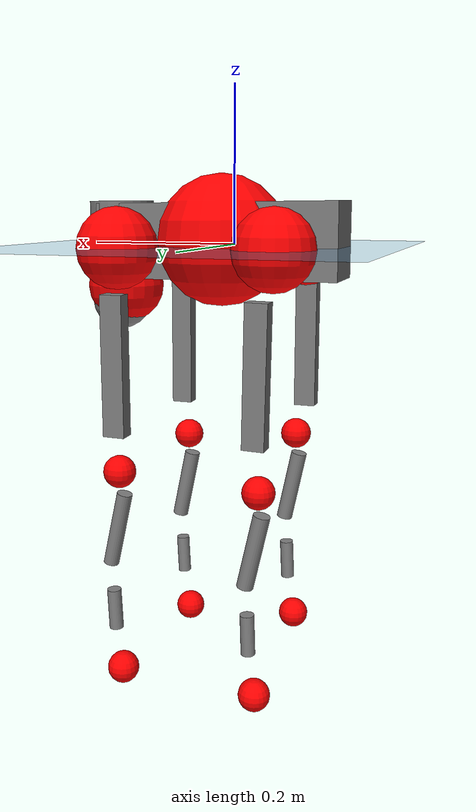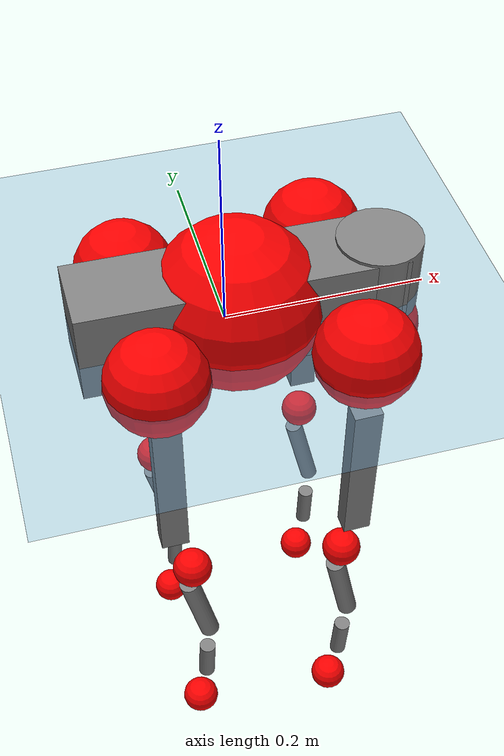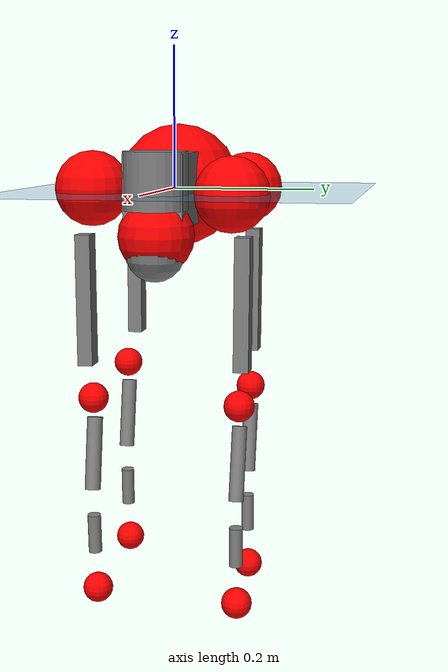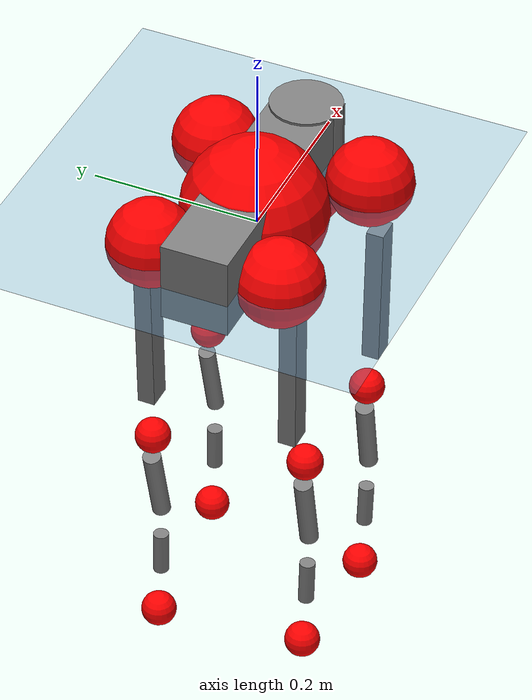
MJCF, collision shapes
<mujoco model="go2">
  <compiler angle="radian" assetdir="assets" balanceinertia="true" inertiafromgeom="false"/>

  <option timestep="0.005" density="1.2" viscosity="2e-05"/>

  <size nkey="1"/>

  <visual>
    <quality shadowsize="8192"/>
    <map shadowclip="0.5"/>
  </visual>

  <default>
    <default class="/">
      <geom contype="0" conaffinity="0" group="1" solref="-1000 -80"/>
      <site size="0.01 0.005 0.005" group="5"/>
      <general forcelimited="true" biastype="affine" gainprm="20" biasprm="0 -20 -0.5"/>
      <default class="go2">
        <joint armature="0.01" damping="0.01" frictionloss="0.2"/>
        <geom condim="1" margin="0.001"/>
        <default class="visual">
          <geom type="mesh" group="2"/>
        </default>
        <default class="collision">
          <geom group="3"/>
          <default class="foot">
            <geom size="0.022 0 0" condim="6" priority="1" friction="0.8 0.02 0.01" solimp="0.015 1 0.022"/>
          </default>
        </default>
        <default class="reward_collision_sphere">
          <geom group="5" rgba="1 0 0 1"/>
        </default>
      </default>
    </default>
  </default>

  <asset>
    <texture type="skybox" colorspace="auto" name="//unnamed_texture_0" builtin="gradient" rgb1="0.95 0.95 0.95" rgb2="0.95 0.95 0.95" width="100" height="600"/>
    <texture type="2d" colorspace="auto" name="texplane" builtin="checker" rgb1="0.345 0.575 0.748" rgb2="0.345 0.575 0.748" markrgb="1 1 1" width="512" height="512"/>
    <material name="MatPlane" class="/" texture="texplane" texuniform="true" texrepeat="2 2" specular="0.9"/>
    <material name="metal" class="/" rgba="0.9 0.95 0.95 1"/>
    <material name="black" class="/" rgba="0 0 0 1"/>
    <material name="white" class="/"/>
    <material name="gray" class="/" rgba="0.671705 0.692426 0.77427 1"/>
    <mesh name="base_0" class="/" file="base_0.obj"/>
    <mesh name="base_1" class="/" file="base_1.obj"/>
    <mesh name="base_2" class="/" file="base_2.obj"/>
    <mesh name="base_3" class="/" file="base_3.obj"/>
    <mesh name="base_4" class="/" file="base_4.obj"/>
    <mesh name="hip_0" class="/" file="hip_0.obj"/>
    <mesh name="hip_1" class="/" file="hip_1.obj"/>
    <mesh name="thigh_0" class="/" file="thigh_0.obj"/>
    <mesh name="thigh_1" class="/" file="thigh_1.obj"/>
    <mesh name="thigh_mirror_0" class="/" file="thigh_mirror_0.obj"/>
    <mesh name="thigh_mirror_1" class="/" file="thigh_mirror_1.obj"/>
    <mesh name="calf_0" class="/" file="calf_0.obj"/>
    <mesh name="calf_1" class="/" file="calf_1.obj"/>
    <mesh name="calf_mirror_0" class="/" file="calf_mirror_0.obj"/>
    <mesh name="calf_mirror_1" class="/" file="calf_mirror_1.obj"/>
    <mesh name="foot" class="/" file="foot.obj"/>
  </asset>

  <worldbody>
    <geom name="floor" class="/" size="100 100 0.125" type="plane" group="0" material="MatPlane"/>
    <light name="toplight_shadow" class="/" pos="0 0 5" dir="0.0990148 0.0990148 -0.990148" type="directional" ambient="0.04 0.04 0.04" diffuse="0.55 0.55 0.55" specular="0.12 0.12 0.12"/>
    <light name="toplight_fill" class="/" pos="0 0 5" dir="0.0990148 0.0990148 -0.990148" type="directional" castshadow="false" ambient="0.04 0.04 0.04" diffuse="0.3 0.3 0.3" specular="0.08 0.08 0.08"/>
    <body name="trunk" childclass="go2" pos="0.013903 0.0097096 0.00580116" quat="0.999984 -0.000987138 0.00542095 0.00117867">
      <inertial pos="0.0250795 0.00113127 -0.00654085" quat="-0.028595 0.710902 -0.00529833 0.70269" mass="4.01515" diaginertia="0.00339453 0.0211429 0.0830285"/>
      <joint name="//unnamed_joint_0" type="free" armature="0" damping="0" frictionloss="0"/>
      <geom name="//unnamed_geom_1" class="visual" material="black" mesh="base_0"/>
      <geom name="//unnamed_geom_2" class="visual" material="black" mesh="base_1"/>
      <geom name="//unnamed_geom_3" class="visual" material="black" mesh="base_2"/>
      <geom name="//unnamed_geom_4" class="visual" material="white" mesh="base_3"/>
      <geom name="//unnamed_geom_5" class="visual" material="gray" mesh="base_4"/>
      <geom name="trunk_1" class="collision" size="0.16036 0.0398555 0.0485938" type="box"/>
      <geom name="trunk_2" class="collision" size="0.0426262 0.0383636" pos="0.141579 0 0.0132211" type="cylinder"/>
      <geom name="trunk_3" class="collision" size="0.0400686" pos="0.145554 0 -0.0793264"/>
      <geom name="//unnamed_geom_9" class="reward_collision_sphere" size="0.0852523"/>
      <geom name="//unnamed_geom_10" class="reward_collision_sphere" size="0.0511514" pos="0.139096 0 -0.0594948"/>
      <site name="imu" pos="-0.0127762 -0.0271859 0.0770009" size="0.00852523"/>
      <camera name="track" pos="0 -1.47739 0" quat="0.707107 0.707107 0 0" mode="trackcom"/>
      <camera name="ego_camera" pos="0.154992 0 0.0594948" quat="-0.5 -0.5 0.5 0.5"/>
      <body name="FL_hip" pos="0.104603 0.0431512 -0.00590649" quat="0.999976 -0.00149321 -0.00675472 -0.000576905">
        <inertial pos="0.0121548 0.00894878 0.00749219" quat="0.49504 0.501466 0.505862 0.497565" mass="0.364795" diaginertia="2.33563e-05 0.000129432 0.00148293"/>
        <joint name="FL_hip_joint" pos="0 0 0" axis="0.999929 0.00996238 -0.00653039" stiffness="0.0294362" range="-1.03028 1.28898" armature="0.00398834" damping="0.0532479" frictionloss="0.117689"/>
        <geom name="//unnamed_geom_11" class="visual" material="metal" mesh="hip_0"/>
        <geom name="//unnamed_geom_12" class="visual" material="gray" mesh="hip_1"/>
        <geom name="//unnamed_geom_13" class="collision" size="0.0392161 0.0170505" pos="0 0.0590955 0" quat="0.707107 0.707107 0 0" type="cylinder"/>
        <geom name="//unnamed_geom_14" class="reward_collision_sphere" size="0.0511514" pos="0 0.0517085 0"/>
        <body name="FL_thigh" pos="-0.00139102 0.0677346 -0.00556551" quat="1 -0.000168689 4.43013e-05 -5.75357e-05">
          <inertial pos="-0.0157135 -0.0178078 -0.0558611" quat="0.827618 0.0875676 -0.018196 0.554121" mass="0.756448" diaginertia="0.000184885 0.00123122 0.003843"/>
          <joint name="FL_thigh_joint" pos="0 0 0" axis="0.0218153 0.999369 0.0280227" range="-1.3442 3.27796" armature="0.00419239" damping="0.0773172" frictionloss="0.109664"/>
          <geom name="//unnamed_geom_15" class="visual" material="metal" mesh="thigh_0"/>
          <geom name="//unnamed_geom_16" class="visual" material="gray" mesh="thigh_1"/>
          <geom name="//unnamed_geom_17" class="collision" size="0.0907937 0.0104434 0.0144929" pos="0 0 -0.140804" quat="0.707107 0 0.707107 0" type="box"/>
          <body name="FL_calf" pos="-0.000968833 -0.0037935 -0.280794" quat="0.99999 -0.000514867 -0.00450018 -0.000128106">
            <inertial pos="-0.00516728 -0.00793144 -0.176603" quat="0.75167 0.00703954 -0.0176501 0.659266" mass="0.141856" diaginertia="4.80073e-05 0.00029349 0.000240136"/>
            <joint name="FL_calf_joint" pos="0 0 0" axis="0.00427496 0.999769 -0.0210635" stiffness="0.00722143" range="-2.70075 -0.603287" armature="0.0122192" damping="0" frictionloss="0.188621"/>
            <geom name="//unnamed_geom_18" class="visual" material="gray" mesh="calf_0"/>
            <geom name="//unnamed_geom_19" class="visual" material="black" mesh="calf_1"/>
            <geom name="FL_calf0" class="collision" size="0.0102303 0.0511514" pos="0.00397416 0 -0.0793264" quat="0.994493 0 -0.104807 0" type="cylinder"/>
            <geom name="//unnamed_geom_21" class="collision" size="0.00937776 0.027707" pos="0.0099354 0 -0.195672" quat="0.999688 0 0.0249974 0" type="cylinder"/>
            <geom name="//unnamed_geom_22" class="visual" pos="0 0 -0.281609" quat="1 0 0 0" material="black" mesh="foot"/>
            <geom name="FL_foot" class="foot" size="0.0161568" pos="-0.00099354 0 -0.281609"/>
            <geom name="//unnamed_geom_24" class="reward_collision_sphere" size="0.0213131"/>
            <geom name="//unnamed_geom_25" class="reward_collision_sphere" size="0.0213131" pos="-0.00099354 0 -0.281609"/>
            <site name="FL_foot" class="foot" pos="-0.00099354 0 -0.281609" size="0.00852523"/>
          </body>
        </body>
      </body>
      <body name="FR_hip" pos="0.0985975 -0.046199 -0.000351648" quat="0.999994 -0.000200329 -0.00248453 0.00228122">
        <inertial pos="-0.0136376 -0.00563152 0.000215667" quat="0.497343 0.506121 0.50076 0.495712" mass="0.295803" diaginertia="2.42265e-05 0.000120168 0.00189356"/>
        <joint name="FR_hip_joint" pos="0 0 0" axis="0.99988 -0.011239 -0.0106505" stiffness="0.0529392" range="-1.20749 1.04613" armature="0.014735" damping="0.00837141" frictionloss="0.0502681"/>
        <geom name="//unnamed_geom_26" class="visual" pos="0 -5.08246e-09 -2.17997e-07" quat="4.63268e-05 1 0 0" material="metal" mesh="hip_0"/>
        <geom name="//unnamed_geom_27" class="visual" pos="0 -8.23927e-09 5.3919e-07" quat="4.63268e-05 1 0 0" material="gray" mesh="hip_1"/>
        <geom name="//unnamed_geom_28" class="collision" size="0.0392161 0.0170505" pos="0 -0.0590955 0" quat="0.707107 0.707107 0 0" type="cylinder"/>
        <geom name="//unnamed_geom_29" class="reward_collision_sphere" size="0.0511514" pos="0 -0.0517085 0"/>
        <body name="FR_thigh" pos="-0.00042874 -0.0649169 -0.0125123" quat="0.999977 0.00522124 -0.00168215 0.00395734">
          <inertial pos="0.00816464 0.0311013 -0.0388418" quat="0.551346 -0.00962668 0.0870223 0.82967" mass="0.904692" diaginertia="0.000193943 0.00148149 0.00431955"/>
          <joint name="FR_thigh_joint" pos="0 0 0" axis="0.00614286 -0.999916 0.0114426" stiffness="0.00570702" range="-3.39915 1.68201" armature="0.00874083" damping="0" frictionloss="0.117144"/>
          <geom name="//unnamed_geom_30" class="visual" material="metal" mesh="thigh_mirror_0"/>
          <geom name="//unnamed_geom_31" class="visual" material="gray" mesh="thigh_mirror_1"/>
          <geom name="//unnamed_geom_32" class="collision" size="0.0907937 0.0104434 0.0144929" pos="0 0 -0.140804" quat="0.707107 0 0.707107 0" type="box"/>
          <body name="FR_calf" pos="-0.00924565 0.00432741 -0.281543" quat="1 -3.94651e-05 3.59718e-05 -8.67562e-06">
            <inertial pos="-0.00435647 -0.000555976 -0.182707" quat="0.707485 0.00289815 -0.00405784 0.706711" mass="0.1215" diaginertia="3.28577e-05 0.000310256 0.000182902"/>
            <joint name="FR_calf_joint" pos="0 0 0" axis="-0.0133808 -0.998466 0.0537349" stiffness="0.0412784" range="0.857757 2.75541" armature="0.00812591" damping="0" frictionloss="0.137228"/>
            <geom name="//unnamed_geom_33" class="visual" material="gray" mesh="calf_mirror_0"/>
            <geom name="//unnamed_geom_34" class="visual" material="black" mesh="calf_mirror_1"/>
            <geom name="FR_calf0" class="collision" size="0.0110828 0.0511514" pos="0.0049677 0 -0.0793264" quat="0.995004 0 -0.0998334 0" type="cylinder"/>
            <geom name="//unnamed_geom_36" class="collision" size="0.00937776 0.027707" pos="0.0099354 0 -0.195672" quat="0.999688 0 0.0249974 0" type="cylinder"/>
            <geom name="//unnamed_geom_37" class="visual" pos="0 0 -0.281609" quat="1 0 0 0" material="black" mesh="foot"/>
            <geom name="FR_foot" class="foot" size="0.0159179" pos="-0.00099354 0 -0.281609"/>
            <geom name="//unnamed_geom_39" class="reward_collision_sphere" size="0.0213131"/>
            <geom name="//unnamed_geom_40" class="reward_collision_sphere" size="0.0213131" pos="-0.00099354 0 -0.281609"/>
            <site name="FR_foot" class="foot" pos="-0.00099354 0 -0.281609" size="0.00852523"/>
          </body>
        </body>
      </body>
      <body name="RL_hip" pos="-0.0934658 0.0316629 -0.00811932" quat="0.999969 0.000496975 -0.00711564 -0.00324367">
        <inertial pos="-0.0112502 0.00485716 -0.00155839" quat="0.50486 0.498442 0.49733 0.499334" mass="0.399079" diaginertia="2.66417e-05 0.000113679 0.00202238"/>
        <joint name="RL_hip_joint" pos="0 0 0" axis="-0.999859 0.0164947 0.00307746" range="-0.991092 1.00773" armature="0.00832713" damping="0" frictionloss="0.121882"/>
        <geom name="//unnamed_geom_41" class="visual" pos="7.19e-09 0 1.4094e-06" quat="4.63268e-05 0 1 0" material="metal" mesh="hip_0"/>
        <geom name="//unnamed_geom_42" class="visual" pos="1.16558e-08 0 1.24994e-06" quat="4.63268e-05 0 1 0" material="gray" mesh="hip_1"/>
        <geom name="//unnamed_geom_43" class="collision" size="0.0392161 0.0170505" pos="0 0.0590955 0" quat="0.707107 0.707107 0 0" type="cylinder"/>
        <geom name="//unnamed_geom_44" class="reward_collision_sphere" size="0.0511514" pos="0 0.0517085 0"/>
        <body name="RL_thigh" pos="0.0132647 0.0643008 -0.0101236" quat="0.999977 -0.00218843 -0.00564789 -0.00291049">
          <inertial pos="-0.00213141 -0.0135801 -0.0404203" quat="0.844944 0.0484204 -0.0613967 0.529108" mass="0.818041" diaginertia="0.000170151 0.00145929 0.00332645"/>
          <joint name="RL_thigh_joint" pos="0 0 0" axis="0.00488057 0.999985 0.00232233" range="-0.479999 4.52186" armature="0.0120186" damping="0.0775738" frictionloss="0.215419"/>
          <geom name="//unnamed_geom_45" class="visual" material="metal" mesh="thigh_0"/>
          <geom name="//unnamed_geom_46" class="visual" material="gray" mesh="thigh_1"/>
          <geom name="//unnamed_geom_47" class="collision" size="0.0907937 0.0104434 0.0144929" pos="0 0 -0.140804" quat="0.707107 0 0.707107 0" type="box"/>
          <body name="RL_calf" pos="-0.00541896 -0.00244366 -0.288655" quat="1 3.89761e-05 -5.49518e-05 -9.46685e-05">
            <inertial pos="0.00246724 -2.35752e-05 -0.195055" quat="0.711235 0.00351889 0.00049005 0.702945" mass="0.150407" diaginertia="4.49791e-05 0.000324147 0.000218562"/>
            <joint name="RL_calf_joint" pos="0 0 0" axis="0.00616079 0.999943 -0.00870094" stiffness="0.00436853" range="-2.64374 -0.855966" armature="0.0118319" damping="0.0670365" frictionloss="0.169879"/>
            <geom name="//unnamed_geom_48" class="visual" material="gray" mesh="calf_0"/>
            <geom name="//unnamed_geom_49" class="visual" material="black" mesh="calf_1"/>
            <geom name="RL_calf0" class="collision" size="0.0110828 0.0511514" pos="0.0049677 0 -0.0793264" quat="0.995004 0 -0.0998334 0" type="cylinder"/>
            <geom name="//unnamed_geom_51" class="collision" size="0.00937776 0.027707" pos="0.0099354 0 -0.195672" quat="0.999688 0 0.0249974 0" type="cylinder"/>
            <geom name="//unnamed_geom_52" class="visual" pos="0 0 -0.281609" quat="1 0 0 0" material="black" mesh="foot"/>
            <geom name="RL_foot" class="foot" size="0.0120102" pos="-0.00099354 0 -0.281609"/>
            <geom name="//unnamed_geom_54" class="reward_collision_sphere" size="0.0213131"/>
            <geom name="//unnamed_geom_55" class="reward_collision_sphere" size="0.0213131" pos="-0.00099354 0 -0.281609"/>
            <site name="RL_foot" class="foot" pos="-0.00099354 0 -0.281609" size="0.00852523"/>
          </body>
        </body>
      </body>
      <body name="RR_hip" pos="-0.0945113 -0.0208636 -0.0110001" quat="0.999988 0.00395475 -0.0025562 -0.00152599">
        <inertial pos="0.000572813 -0.0124327 0.000978745" quat="0.513818 0.498115 0.531977 0.452629" mass="0.422228" diaginertia="2.39391e-05 0.000116272 0.00207555"/>
        <joint name="RR_hip_joint" pos="0 0 0" axis="-0.999895 -0.0121031 -0.00793016" range="-1.09992 1.05126" armature="0.00201058" damping="0" frictionloss="0.274315"/>
        <geom name="//unnamed_geom_56" class="visual" pos="-7.18162e-09 -5.08246e-09 1.6274e-06" quat="2.14617e-09 4.63268e-05 4.63268e-05 -1" material="metal" mesh="hip_0"/>
        <geom name="//unnamed_geom_57" class="visual" pos="-1.16766e-08 -8.23927e-09 7.10751e-07" quat="2.14617e-09 4.63268e-05 4.63268e-05 -1" material="gray" mesh="hip_1"/>
        <geom name="//unnamed_geom_58" class="collision" size="0.0392161 0.0170505" pos="0 -0.0590955 0" quat="0.707107 0.707107 0 0" type="cylinder"/>
        <geom name="//unnamed_geom_59" class="reward_collision_sphere" size="0.0511514" pos="0 -0.0517085 0"/>
        <body name="RR_thigh" pos="0.000604137 -0.0677979 0.0114179" quat="0.999995 -0.00305339 -0.000110998 0.00118046">
          <inertial pos="-0.00280397 0.023469 -0.0436719" quat="0.553998 -0.0184 0.08783 0.827668" mass="0.829831" diaginertia="0.000207247 0.00135974 0.00440682"/>
          <joint name="RR_thigh_joint" pos="0 0 0" axis="0.0507645 -0.998507 0.0201781" stiffness="0.0471465" range="-4.27957 0.353104" armature="0.00549993" damping="0.0215279" frictionloss="0.205394"/>
          <geom name="//unnamed_geom_60" class="visual" material="metal" mesh="thigh_mirror_0"/>
          <geom name="//unnamed_geom_61" class="visual" material="gray" mesh="thigh_mirror_1"/>
          <geom name="//unnamed_geom_62" class="collision" size="0.0907937 0.0104434 0.0144929" pos="0 0 -0.140804" quat="0.707107 0 0.707107 0" type="box"/>
          <body name="RR_calf" pos="0.0160424 -0.0103004 -0.2785" quat="0.999999 0.000145962 -0.00140924 -0.000264994">
            <inertial pos="-0.0121031 -0.00163529 -0.194796" quat="0.694535 -0.019915 -0.0197706 0.718911" mass="0.14361" diaginertia="4.79416e-05 0.000427019 0.000223645"/>
            <joint name="RR_calf_joint" pos="0 0 0" axis="-0.00103023 -0.999902 0.013939" stiffness="0.00176743" range="0.63599 2.41211" armature="0.013662" damping="0" frictionloss="0.134052"/>
            <geom name="//unnamed_geom_63" class="visual" material="gray" mesh="calf_mirror_0"/>
            <geom name="//unnamed_geom_64" class="visual" material="black" mesh="calf_mirror_1"/>
            <geom name="RR_calf0" class="collision" size="0.0110828 0.0511514" pos="0.0049677 0 -0.0793264" quat="0.995004 0 -0.0998334 0" type="cylinder"/>
            <geom name="//unnamed_geom_66" class="collision" size="0.00937776 0.027707" pos="0.0099354 0 -0.195672" quat="0.999688 0 0.0249974 0" type="cylinder"/>
            <geom name="//unnamed_geom_67" class="visual" pos="0 0 -0.281609" quat="1 0 0 0" material="black" mesh="foot"/>
            <geom name="RR_foot" class="foot" size="0.0199581" pos="-0.00099354 0 -0.281609"/>
            <geom name="//unnamed_geom_69" class="reward_collision_sphere" size="0.0213131"/>
            <geom name="//unnamed_geom_70" class="reward_collision_sphere" size="0.0213131" pos="-0.00099354 0 -0.281609"/>
            <site name="RR_foot" class="foot" pos="-0.00099354 0 -0.281609" size="0.00852523"/>
          </body>
        </body>
      </body>
    </body>
  </worldbody>

  <contact>
    <pair class="/" geom1="floor" geom2="FL_foot" name="//unnamed_contact_0"/>
    <pair class="/" geom1="floor" geom2="FR_foot" name="//unnamed_contact_1"/>
    <pair class="/" geom1="floor" geom2="RL_foot" name="//unnamed_contact_2"/>
    <pair class="/" geom1="floor" geom2="RR_foot" name="//unnamed_contact_3"/>
  </contact>

  <actuator>
    <general name="FL_hip" class="/" joint="FL_hip_joint" forcerange="-20.7524 20.7524" gainprm="16.9364" biasprm="0 -16.9364 -0.425498"/>
    <general name="FL_thigh" class="/" joint="FL_thigh_joint" forcerange="-25.8616 25.8616" gainprm="16.9364" biasprm="0 -16.9364 -0.425498"/>
    <general name="FL_calf" class="/" joint="FL_calf_joint" forcerange="-41.0753 41.0753" gainprm="16.9364" biasprm="0 -16.9364 -0.425498"/>
    <general name="FR_hip" class="/" joint="FR_hip_joint" forcerange="-8.88779 8.88779" gainprm="16.9364" biasprm="0 -16.9364 -0.425498"/>
    <general name="FR_thigh" class="/" joint="FR_thigh_joint" forcerange="-19.2422 19.2422" gainprm="16.9364" biasprm="0 -16.9364 -0.425498"/>
    <general name="FR_calf" class="/" joint="FR_calf_joint" forcerange="-53.7416 53.7416" gainprm="16.9364" biasprm="0 -16.9364 -0.425498"/>
    <general name="RL_hip" class="/" joint="RL_hip_joint" forcerange="-21.4934 21.4934" gainprm="16.9364" biasprm="0 -16.9364 -0.425498"/>
    <general name="RL_thigh" class="/" joint="RL_thigh_joint" forcerange="-21.6033 21.6033" gainprm="16.9364" biasprm="0 -16.9364 -0.425498"/>
    <general name="RL_calf" class="/" joint="RL_calf_joint" forcerange="-38.0932 38.0932" gainprm="16.9364" biasprm="0 -16.9364 -0.425498"/>
    <general name="RR_hip" class="/" joint="RR_hip_joint" forcerange="-18.8314 18.8314" gainprm="16.9364" biasprm="0 -16.9364 -0.425498"/>
    <general name="RR_thigh" class="/" joint="RR_thigh_joint" forcerange="-23.8492 23.8492" gainprm="16.9364" biasprm="0 -16.9364 -0.425498"/>
    <general name="RR_calf" class="/" joint="RR_calf_joint" forcerange="-19.9732 19.9732" gainprm="16.9364" biasprm="0 -16.9364 -0.425498"/>
  </actuator>

  <sensor>
    <gyro site="imu" name="imu_angular_velocity"/>
    <velocimeter site="imu" name="imu_linear_velocity"/>
    <framelinvel objtype="site" objname="FL_foot" name="FL_foot_global_linear_velocity"/>
    <framelinvel objtype="site" objname="FR_foot" name="FR_foot_global_linear_velocity"/>
    <framelinvel objtype="site" objname="RL_foot" name="RL_foot_global_linear_velocity"/>
    <framelinvel objtype="site" objname="RR_foot" name="RR_foot_global_linear_velocity"/>
  </sensor>

  <keyframe>
    <key name="home" qpos="0 0 0.325 1 0 0 0 0.1 0.8 -1.5 -0.1 -0.8 1.5 -0.1 0.8 -1.5 0.1 -0.8 1.5"/>
  </keyframe>
</mujoco>
